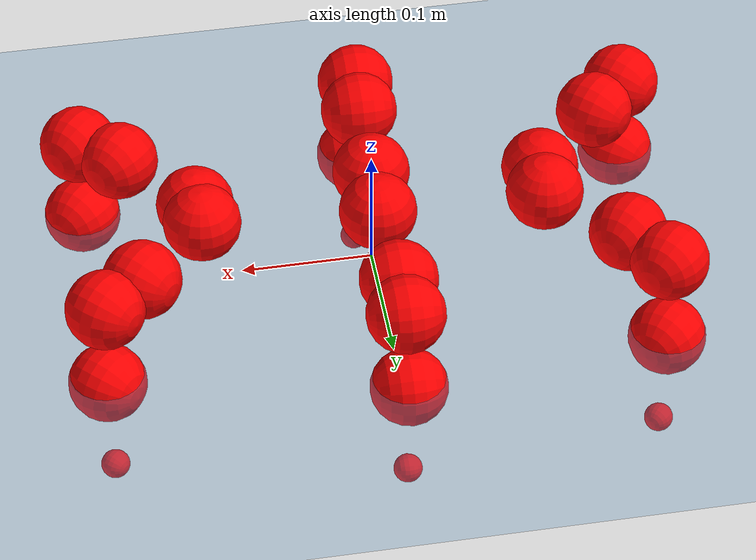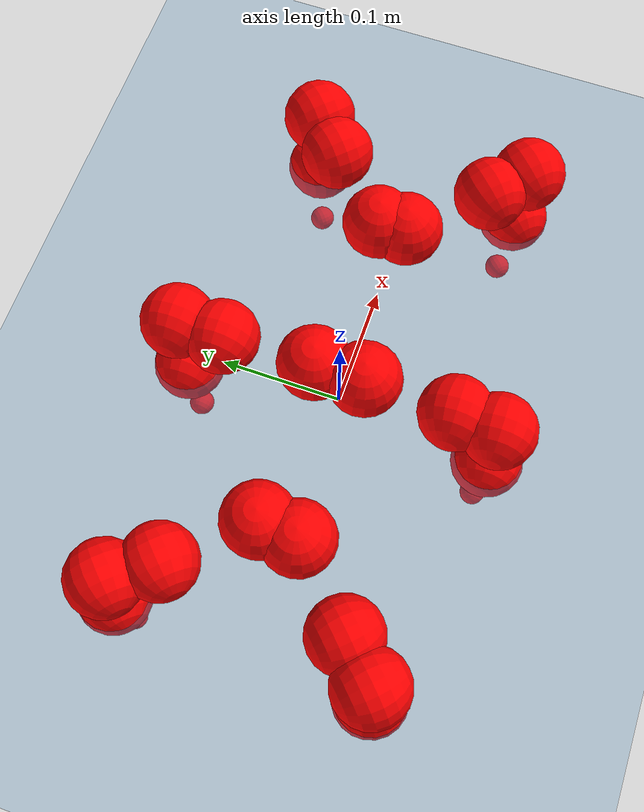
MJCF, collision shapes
<mujoco model="Golem">
  <compiler angle="radian" assetdir="assets" balanceinertia="true" inertiafromgeom="false"/>

  <option timestep="0.005" density="1.2" viscosity="2e-05"/>

  <size nkey="1"/>

  <visual>
    <quality shadowsize="8192"/>
    <map shadowclip="0.5"/>
  </visual>

  <default>
    <default class="/">
      <joint armature="0.01" damping="0.01" frictionloss="0.01"/>
      <geom contype="0" conaffinity="0" group="1" solref="-1000 -80"/>
      <site size="0.01 0.005 0.005" group="5"/>
      <general forcelimited="true" biastype="affine" gainprm="25" biasprm="0 -25 -0.5"/>
      <default class="visual">
        <geom type="mesh" group="2"/>
      </default>
      <default class="collision">
        <geom group="3"/>
      </default>
      <default class="foot">
        <geom size="0.01 0 0" condim="6" group="4" priority="1" solimp="0.015 1 0.01"/>
      </default>
      <default class="reward_collision_sphere">
        <geom group="5" rgba="1 0 0 1"/>
      </default>
    </default>
  </default>

  <asset>
    <texture type="skybox" colorspace="auto" name="//unnamed_texture_0" builtin="gradient" rgb1="0.95 0.95 0.95" rgb2="0.95 0.95 0.95" width="100" height="600"/>
    <texture type="2d" colorspace="auto" name="texplane" builtin="checker" rgb1="0.345 0.575 0.748" rgb2="0.345 0.575 0.748" markrgb="1 1 1" width="512" height="512"/>
    <material name="MatPlane" class="/" texture="texplane" texuniform="true" texrepeat="2 2" specular="0.9"/>
    <mesh name="body" class="/" file="body.stl" scale="0.001 0.001 0.001"/>
    <mesh name="coxa" class="/" file="coxa.stl" scale="0.001 0.001 0.001"/>
    <mesh name="femur" class="/" file="femur.stl" scale="0.001 0.001 0.001"/>
    <mesh name="tibia" class="/" file="tibia.stl" scale="0.001 0.001 0.001"/>
    <mesh name="tarsus" class="/" file="tarsus.stl" scale="0.001 0.001 0.001"/>
  </asset>

  <worldbody>
    <geom name="floor" class="/" size="100 100 0.125" type="plane" group="0" material="MatPlane"/>
    <light name="toplight_shadow" class="/" pos="0 0 5" dir="0.0990148 0.0990148 -0.990148" type="directional" ambient="0.04 0.04 0.04" diffuse="0.55 0.55 0.55" specular="0.12 0.12 0.12"/>
    <light name="toplight_fill" class="/" pos="0 0 5" dir="0.0990148 0.0990148 -0.990148" type="directional" castshadow="false" ambient="0.04 0.04 0.04" diffuse="0.3 0.3 0.3" specular="0.08 0.08 0.08"/>
    <body name="trunk" pos="0.00048562 -0.000506573 0.00161158" quat="1 -7.9307e-05 -3.05395e-05 0.000122478">
      <inertial pos="0.00283227 0.000380834 -0.00234402" quat="0.999999 -0.000427098 0.000461509 0.00125698" mass="1.47977" diaginertia="0.00437756 5.77251e-05 0.0103425"/>
      <joint name="//unnamed_joint_0" type="free"/>
      <geom name="//unnamed_geom_1" class="/" pos="0 0 0.0641268" quat="1 0 0 0" type="mesh" rgba="0.9 0.9 0.9 1" mesh="body"/>
      <site name="imu" class="/" pos="0.111338 -0.0137383 0.0992953" size="0.00735098"/>
      <camera name="track" class="/" pos="0 -0.717352 0" quat="0.707107 0.707107 0 0" mode="trackcom"/>
      <camera name="ego_camera" class="/" pos="0.109803 0 0.100198" quat="-0.5 -0.5 0.5 0.5"/>
      <body name="coxa_RR" pos="-0.150445 -0.0312923 0.0591095" quat="0.38259 -6.6867e-05 2.97409e-05 -0.923918">
        <inertial pos="-0.00106782 0.00085632 0.00192858" quat="0.999918 -0.00600443 -0.0105502 -0.00397937" mass="0.0799852" diaginertia="0.00436831 6.01261e-05 0.0104568"/>
        <joint name="coxa_joint_RR" class="/" pos="0 0 0" axis="0.000355557 0.000792956 -1" stiffness="0.00476987" range="-3.17767 3.12271" armature="0.0073697" damping="0" frictionloss="0.00835248"/>
        <geom name="//unnamed_geom_2" class="/" type="mesh" rgba="0.2 0.2 0.2 1" mesh="coxa"/>
        <geom name="//unnamed_geom_3" class="reward_collision_sphere" size="0.0294039" pos="-0.0253391 0 0"/>
        <body name="femur_RR" pos="0.0510514 -8.91943e-05 0.00218113" quat="0.500203 -0.499837 0.499993 0.499967">
          <inertial pos="-0.000188171 0.000616521 -0.00149653" quat="0.999992 0.00157886 0.00235148 0.0028538" mass="0.0788733" diaginertia="0.00447473 6.17877e-05 0.00987048"/>
          <joint name="femur_joint_RR" class="/" pos="0 0 0" axis="0.000857442 0.0139865 -0.999902" range="-3.12234 3.12022" armature="0.00689781" damping="0" frictionloss="0.00653612"/>
          <geom name="//unnamed_geom_4" class="/" type="mesh" rgba="0.9 0.9 0.9 1" mesh="femur"/>
          <geom name="//unnamed_geom_5" class="reward_collision_sphere" size="0.0294039"/>
          <body name="tibia_RR" pos="-0.000997525 -0.0387785 0.000379557" quat="-0.000980423 0.999999 -7.54321e-07 0.000542049">
            <inertial pos="0.00191242 0.00273682 0.000361561" quat="0.999993 0.00171544 -0.000256682 0.00321517" mass="0.0813936" diaginertia="0.00418419 5.91939e-05 0.00993487"/>
            <joint name="tibia_joint_RR" class="/" pos="0 0 0" axis="0.00168122 0.00296841 0.999994" stiffness="0.00879045" range="-3.12773 3.12006" armature="0.00676028" damping="0.00496763" frictionloss="0.00717153"/>
            <geom name="//unnamed_geom_6" class="/" type="mesh" rgba="0.2 0.2 0.2 1" mesh="tibia"/>
            <geom name="//unnamed_geom_7" class="reward_collision_sphere" size="0.0294039"/>
            <body name="tarsus_RR" pos="0.0730457 0.00201599 -0.00127801" quat="0.999999 -0.00132493 7.08125e-05 -0.000185248">
              <inertial pos="0.0493709 9.50141e-06 0.000699965" quat="0.501799 0.496027 0.50032 0.501831" mass="0.0824128" diaginertia="0.00459996 5.93635e-05 0.0108045"/>
              <joint name="tarsus_joint_RR" class="/" pos="0 0 0" axis="-0.00799054 0.00160613 0.999967" range="-3.19586 3.13055" armature="0.00673144" damping="0.0105932" frictionloss="0.00767257"/>
              <geom name="//unnamed_geom_8" class="/" type="mesh" rgba="0.9 0.9 0.9 1" mesh="tarsus"/>
              <geom name="foot_1" class="foot" size="0.00787599" pos="0.0945995 0 0" quat="0 -0.707107 0 0.707107"/>
              <geom name="//unnamed_geom_10" class="reward_collision_sphere" size="0.0294039"/>
              <geom name="//unnamed_geom_11" class="reward_collision_sphere" size="0.0110265" pos="0.0907986 0 0"/>
              <site name="foot_1" class="foot" pos="0.0945995 0 0" quat="0 -0.707107 0 0.707107" size="0.00735098"/>
            </body>
          </body>
        </body>
      </body>
      <body name="coxa_RM" pos="-0.00352241 -0.0456041 0.0673396" quat="0.707126 -0.000260028 0.000355755 -0.707087">
        <inertial pos="0.00283664 -0.00117755 0.00287586" quat="0.999993 -0.000645211 0.00328532 -0.00146811" mass="0.0762384" diaginertia="0.00416695 5.86293e-05 0.009962"/>
        <joint name="coxa_joint_RM" class="/" pos="0 0 0" axis="-0.00405197 -0.00417294 -0.999983" range="-3.14768 3.1724" armature="0.00733245" damping="0.0114467" frictionloss="0.00650049"/>
        <geom name="//unnamed_geom_12" class="/" type="mesh" rgba="0.2 0.2 0.2 1" mesh="coxa"/>
        <geom name="//unnamed_geom_13" class="reward_collision_sphere" size="0.0294039" pos="-0.0253391 0 0"/>
        <body name="femur_RM" pos="0.0470209 -0.0026297 -0.0022287" quat="0.500028 -0.49998 0.500074 0.499918">
          <inertial pos="0.00264064 0.00148904 -0.000292701" quat="0.999969 0.00719696 0.0024038 -0.00229381" mass="0.0844324" diaginertia="0.00439701 5.88684e-05 0.0100131"/>
          <joint name="femur_joint_RM" class="/" pos="0 0 0" axis="0.00127151 0.0120321 -0.999927" range="-3.19668 3.15995" armature="0.00750101" damping="0.0214926" frictionloss="0.008262"/>
          <geom name="//unnamed_geom_14" class="/" type="mesh" rgba="0.9 0.9 0.9 1" mesh="femur"/>
          <geom name="//unnamed_geom_15" class="reward_collision_sphere" size="0.0294039"/>
          <body name="tibia_RM" pos="0.00122084 -0.0343003 -0.00271595" quat="3.17282e-06 1 3.29278e-06 -4.54538e-06">
            <inertial pos="0.00268761 -0.00332082 -0.00117171" quat="0.999973 -0.00335564 0.00374792 -0.00544541" mass="0.0794558" diaginertia="0.0042984 5.79604e-05 0.0101839"/>
            <joint name="tibia_joint_RM" class="/" pos="0 0 0" axis="-0.000651521 0.00534505 0.999986" range="-3.12122 3.08458" armature="0.00765495" damping="0.0219298" frictionloss="0.00735542"/>
            <geom name="//unnamed_geom_16" class="/" type="mesh" rgba="0.2 0.2 0.2 1" mesh="tibia"/>
            <geom name="//unnamed_geom_17" class="reward_collision_sphere" size="0.0294039"/>
            <body name="tarsus_RM" pos="0.0769225 0.00104571 -0.00145766" quat="1 0.000101482 0.000190572 5.02459e-05">
              <inertial pos="0.0535818 -0.0017471 0.000559288" quat="0.494596 0.507815 0.493403 0.504037" mass="0.0805085" diaginertia="0.00445 6.13897e-05 0.00977655"/>
              <joint name="tarsus_joint_RM" class="/" pos="0 0 0" axis="-2.66231e-05 -0.00179012 0.999998" stiffness="0.0067681" range="-3.12848 3.19578" armature="0.00722278" damping="0.00903526" frictionloss="0.00698397"/>
              <geom name="//unnamed_geom_18" class="/" type="mesh" rgba="0.9 0.9 0.9 1" mesh="tarsus"/>
              <geom name="foot_2" class="foot" size="0.00758586" pos="0.0945995 0 0" quat="0 -0.707107 0 0.707107"/>
              <geom name="//unnamed_geom_20" class="reward_collision_sphere" size="0.0294039"/>
              <geom name="//unnamed_geom_21" class="reward_collision_sphere" size="0.0110265" pos="0.0907986 0 0"/>
              <site name="foot_2" class="foot" pos="0.0945995 0 0" quat="0 -0.707107 0 0.707107" size="0.00735098"/>
            </body>
          </body>
        </body>
      </body>
      <body name="coxa_RF" pos="0.149365 -0.0284761 0.0627538" quat="0.923789 -0.000591202 9.34631e-05 -0.382902">
        <inertial pos="-0.00212429 0.000519842 0.00299716" quat="0.999933 -0.00805393 -0.008129 0.00177333" mass="0.0776789" diaginertia="0.00444595 6.04761e-05 0.0101238"/>
        <joint name="coxa_joint_RF" class="/" pos="0 0 0" axis="0.00572441 4.5811e-05 -0.999984" range="-3.19485 3.15475" armature="0.00640785" damping="0.0237454" frictionloss="0.00735379"/>
        <geom name="//unnamed_geom_22" class="/" type="mesh" rgba="0.2 0.2 0.2 1" mesh="coxa"/>
        <geom name="//unnamed_geom_23" class="reward_collision_sphere" size="0.0294039" pos="-0.0253391 0 0"/>
        <body name="femur_RF" pos="0.0493679 -0.00226299 0.00291797" quat="0.499758 -0.499755 0.500132 0.500355">
          <inertial pos="-0.00047163 -0.0022357 0.00087853" quat="0.999996 0.000684585 9.44628e-05 -0.00258927" mass="0.0780784" diaginertia="0.00417282 5.92417e-05 0.00997594"/>
          <joint name="femur_joint_RF" class="/" pos="0 0 0" axis="-0.0111657 0.00429046 -0.999928" range="-3.09156 3.13797" armature="0.00770442" damping="0" frictionloss="0.00700588"/>
          <geom name="//unnamed_geom_24" class="/" type="mesh" rgba="0.9 0.9 0.9 1" mesh="femur"/>
          <geom name="//unnamed_geom_25" class="reward_collision_sphere" size="0.0294039"/>
          <body name="tibia_RF" pos="0.00115559 -0.0376811 0.00297519" quat="-0.000592664 0.999999 0.000325377 0.000917282">
            <inertial pos="0.00120055 0.0028984 -0.00264082" quat="0.999923 0.0119627 0.00273814 0.00166633" mass="0.0800279" diaginertia="0.00433242 5.77941e-05 0.00969121"/>
            <joint name="tibia_joint_RF" class="/" pos="0 0 0" axis="0.00568509 -0.00270672 0.99998" stiffness="0.0063261" range="-3.16668 3.1493" armature="0.00641665" damping="0.00442538" frictionloss="0.00740791"/>
            <geom name="//unnamed_geom_26" class="/" type="mesh" rgba="0.2 0.2 0.2 1" mesh="tibia"/>
            <geom name="//unnamed_geom_27" class="reward_collision_sphere" size="0.0294039"/>
            <body name="tarsus_RF" pos="0.0715697 2.46817e-06 -0.00276851" quat="1 2.48289e-05 -0.000497776 6.7175e-05">
              <inertial pos="0.0501436 -0.000265781 -0.000146893" quat="0.497345 0.509233 0.495071 0.498231" mass="0.0760207" diaginertia="0.00430921 5.85778e-05 0.0098938"/>
              <joint name="tarsus_joint_RF" class="/" pos="0 0 0" axis="-0.0019794 0.0017977 0.999996" stiffness="0.00122891" range="-3.12974 3.17346" armature="0.00742376" damping="0.0159995" frictionloss="0.0082651"/>
              <geom name="//unnamed_geom_28" class="/" type="mesh" rgba="0.9 0.9 0.9 1" mesh="tarsus"/>
              <geom name="foot_3" class="foot" size="0.00791345" pos="0.0945995 0 0" quat="0 -0.707107 0 0.707107"/>
              <geom name="//unnamed_geom_30" class="reward_collision_sphere" size="0.0294039"/>
              <geom name="//unnamed_geom_31" class="reward_collision_sphere" size="0.0110265" pos="0.0907986 0 0"/>
              <site name="foot_3" class="foot" pos="0.0945995 0 0" quat="0 -0.707107 0 0.707107" size="0.00735098"/>
            </body>
          </body>
        </body>
      </body>
      <body name="coxa_LR" pos="-0.147628 0.0353403 0.0622274" quat="0.382582 1.26104e-05 0.000513443 0.923921">
        <inertial pos="0.00122968 -0.00185421 -0.0025827" quat="0.999948 0.00790137 0.00617574 -0.0016118" mass="0.081289" diaginertia="0.00440242 6.0457e-05 0.0102875"/>
        <joint name="coxa_joint_LR" class="/" pos="0 0 0" axis="0.000455944 -0.00127941 -0.999999" range="-3.16361 3.12709" armature="0.00631784" damping="0.0122863" frictionloss="0.00760136"/>
        <geom name="//unnamed_geom_32" class="/" type="mesh" rgba="0.2 0.2 0.2 1" mesh="coxa"/>
        <geom name="//unnamed_geom_33" class="reward_collision_sphere" size="0.0294039" pos="-0.0253391 0 0"/>
        <body name="femur_LR" pos="0.050008 -0.00255911 0.00215011" quat="0.500063 -0.500089 0.499567 0.500281">
          <inertial pos="0.00262878 -0.000387529 -0.00172379" quat="0.999993 -0.00259364 -0.000605713 0.00247701" mass="0.0795797" diaginertia="0.00432256 5.94733e-05 0.0105344"/>
          <joint name="femur_joint_LR" class="/" pos="0 0 0" axis="-0.00132838 -0.00265766 0.999996" range="-3.08357 3.13128" armature="0.00776409" damping="0.005983" frictionloss="0.00734784"/>
          <geom name="//unnamed_geom_34" class="/" type="mesh" rgba="0.9 0.9 0.9 1" mesh="femur"/>
          <geom name="//unnamed_geom_35" class="reward_collision_sphere" size="0.0294039"/>
          <body name="tibia_LR" pos="0.00181159 -0.0398026 -0.00663926" quat="5.73286e-05 1 -2.98849e-05 6.27926e-05">
            <inertial pos="0.00260105 -0.00378266 0.00390539" quat="0.999957 0.00853728 0.00222474 -0.00297805" mass="0.0757787" diaginertia="0.00424284 6.04064e-05 0.010007"/>
            <joint name="tibia_joint_LR" class="/" pos="0 0 0" axis="-0.000201801 -0.00122115 -0.999999" range="-3.09877 3.11366" armature="0.00714165" damping="0.0120748" frictionloss="0.00631508"/>
            <geom name="//unnamed_geom_36" class="/" type="mesh" rgba="0.2 0.2 0.2 1" mesh="tibia"/>
            <geom name="//unnamed_geom_37" class="reward_collision_sphere" size="0.0294039"/>
            <body name="tarsus_LR" pos="0.0735862 0.00563223 0.00306196" quat="1 -0.000457814 -0.000537925 0.000530904">
              <inertial pos="0.0500175 -0.00182468 -0.000728104" quat="0.501023 0.496968 0.498355 0.503627" mass="0.080995" diaginertia="0.00438199 5.8299e-05 0.0101417"/>
              <joint name="tarsus_joint_LR" class="/" pos="0 0 0" axis="-0.0110782 0.00289872 -0.999934" range="-3.12366 3.13031" armature="0.00749551" damping="0.013267" frictionloss="0.00745877"/>
              <geom name="//unnamed_geom_38" class="/" type="mesh" rgba="0.9 0.9 0.9 1" mesh="tarsus"/>
              <geom name="foot_4" class="foot" size="0.00700146" pos="0.0945995 0 0" quat="0.707107 0 -0.707107 0"/>
              <geom name="//unnamed_geom_40" class="reward_collision_sphere" size="0.0294039"/>
              <geom name="//unnamed_geom_41" class="reward_collision_sphere" size="0.0110265" pos="0.0907986 0 0"/>
              <site name="foot_4" class="foot" pos="0.0945995 0 0" quat="0.707107 0 -0.707107 0" size="0.00735098"/>
            </body>
          </body>
        </body>
      </body>
      <body name="coxa_LM" pos="-0.00212939 0.0454184 0.0642662" quat="0.707232 -0.000118836 5.16591e-06 0.706981">
        <inertial pos="-0.00235678 -0.000253159 0.00281958" quat="0.999999 0.000602028 -0.00130494 0.000311648" mass="0.0765985" diaginertia="0.00427871 5.91076e-05 0.0103951"/>
        <joint name="coxa_joint_LM" class="/" pos="0 0 0" axis="-0.00324881 0.00258145 -0.999991" range="-3.17479 3.11778" armature="0.00636294" damping="0.0144351" frictionloss="0.00807059"/>
        <geom name="//unnamed_geom_42" class="/" type="mesh" rgba="0.2 0.2 0.2 1" mesh="coxa"/>
        <geom name="//unnamed_geom_43" class="reward_collision_sphere" size="0.0294039" pos="-0.0253391 0 0"/>
        <body name="femur_LM" pos="0.0480768 0.00289789 0.000438067" quat="0.49982 -0.50022 0.499946 0.500014">
          <inertial pos="4.65306e-05 -0.00236668 -0.000502482" quat="0.999907 0.00142818 0.0125051 -0.00526525" mass="0.0769366" diaginertia="0.00417161 5.84549e-05 0.00993886"/>
          <joint name="femur_joint_LM" class="/" pos="0 0 0" axis="-0.0146036 -0.00291768 0.999889" stiffness="0.010407" range="-3.10786 3.1512" armature="0.00625075" damping="0.0138851" frictionloss="0.00831661"/>
          <geom name="//unnamed_geom_44" class="/" type="mesh" rgba="0.9 0.9 0.9 1" mesh="femur"/>
          <geom name="//unnamed_geom_45" class="reward_collision_sphere" size="0.0294039"/>
          <body name="tibia_LM" pos="-0.000690233 -0.036847 -0.00104679" quat="5.95886e-05 1 -6.43255e-05 0.000110691">
            <inertial pos="-0.000361643 -0.000431941 -0.000287523" quat="1 -0.000349956 -3.31789e-05 0.000649738" mass="0.0824939" diaginertia="0.00426174 5.94737e-05 0.0101668"/>
            <joint name="tibia_joint_LM" class="/" pos="0 0 0" axis="-0.003071 -0.00240821 -0.999992" stiffness="0.00325026" range="-3.09509 3.14416" armature="0.00747132" damping="6.30321e-05" frictionloss="0.0063274"/>
            <geom name="//unnamed_geom_46" class="/" type="mesh" rgba="0.2 0.2 0.2 1" mesh="tibia"/>
            <geom name="//unnamed_geom_47" class="reward_collision_sphere" size="0.0294039"/>
            <body name="tarsus_LM" pos="0.0780533 -0.000780438 -0.00315395" quat="1 -0.000441405 0.000296645 8.73618e-05">
              <inertial pos="0.0480722 -0.00144851 -0.000248834" quat="0.499954 0.498876 0.500586 0.500583" mass="0.0773773" diaginertia="0.00430184 5.99171e-05 0.0104003"/>
              <joint name="tarsus_joint_LM" class="/" pos="0 0 0" axis="0.00022075 0.00906922 -0.999959" range="-3.09983 3.09255" armature="0.00743952" damping="0.00504025" frictionloss="0.00668903"/>
              <geom name="//unnamed_geom_48" class="/" type="mesh" rgba="0.9 0.9 0.9 1" mesh="tarsus"/>
              <geom name="foot_5" class="foot" size="0.00753089" pos="0.0945995 0 0" quat="0.707107 0 -0.707107 0"/>
              <geom name="//unnamed_geom_50" class="reward_collision_sphere" size="0.0294039"/>
              <geom name="//unnamed_geom_51" class="reward_collision_sphere" size="0.0110265" pos="0.0907986 0 0"/>
              <site name="foot_5" class="foot" pos="0.0945995 0 0" quat="0.707107 0 -0.707107 0" size="0.00735098"/>
            </body>
          </body>
        </body>
      </body>
      <body name="coxa_LF" pos="0.146798 0.0296349 0.0652793" quat="0.923422 -0.000220278 0.000679398 0.383785">
        <inertial pos="0.000121975 -0.00222454 -4.74843e-05" quat="0.999967 -0.00131502 -0.00547073 -0.00593955" mass="0.0765202" diaginertia="0.00417965 5.67415e-05 0.00977641"/>
        <joint name="coxa_joint_LF" class="/" pos="0 0 0" axis="0.000289741 0.00330347 -0.999995" range="-3.18867 3.08822" armature="0.00761173" damping="0.00198626" frictionloss="0.00838944"/>
        <geom name="//unnamed_geom_52" class="/" type="mesh" rgba="0.2 0.2 0.2 1" mesh="coxa"/>
        <geom name="//unnamed_geom_53" class="reward_collision_sphere" size="0.0294039" pos="-0.0253391 0 0"/>
        <body name="femur_LF" pos="0.047443 0.00130304 0.000132054" quat="0.50048 -0.498785 0.500549 0.500184">
          <inertial pos="0.00125578 -0.000530009 -0.000163056" quat="1 0.000365505 -0.000163315 0.000556452" mass="0.0798819" diaginertia="0.00419414 5.88567e-05 0.00978721"/>
          <joint name="femur_joint_LF" class="/" pos="0 0 0" axis="0.012951 0.00782303 0.999886" range="-3.16036 3.08308" armature="0.00760295" damping="0.0123466" frictionloss="0.00750619"/>
          <geom name="//unnamed_geom_54" class="/" type="mesh" rgba="0.9 0.9 0.9 1" mesh="femur"/>
          <geom name="//unnamed_geom_55" class="reward_collision_sphere" size="0.0294039"/>
          <body name="tibia_LF" pos="0.000665478 -0.0387867 -0.00294563" quat="0.000220135 1 -3.07432e-05 6.57419e-05">
            <inertial pos="0.000990548 0.000105145 -0.00116243" quat="0.9999 0.0139912 -0.00106646 0.00178862" mass="0.081876" diaginertia="0.00417407 5.716e-05 0.00972621"/>
            <joint name="tibia_joint_LF" class="/" pos="0 0 0" axis="0.014359 -0.00411213 -0.999888" stiffness="0.00618482" range="-3.14164 3.11993" armature="0.00847261" damping="0.00849725" frictionloss="0.0064216"/>
            <geom name="//unnamed_geom_56" class="/" type="mesh" rgba="0.2 0.2 0.2 1" mesh="tibia"/>
            <geom name="//unnamed_geom_57" class="reward_collision_sphere" size="0.0294039"/>
            <body name="tarsus_LF" pos="0.076681 0.00205213 0.00237531" quat="1 0.000124903 -0.000346464 0.000125144">
              <inertial pos="0.0488 0.00129253 0.000209326" quat="0.49802 0.500549 0.500551 0.500875" mass="0.0758913" diaginertia="0.00427302 5.74884e-05 0.00972301"/>
              <joint name="tarsus_joint_LF" class="/" pos="0 0 0" axis="0.00254204 0.0111707 -0.999934" stiffness="0.0328734" range="-3.1335 3.19358" armature="0.00761794" damping="0.0289847" frictionloss="0.00737337"/>
              <geom name="//unnamed_geom_58" class="/" type="mesh" rgba="0.9 0.9 0.9 1" mesh="tarsus"/>
              <geom name="foot_6" class="foot" size="0.00732467" pos="0.0945995 0 0" quat="0.707107 0 -0.707107 0"/>
              <geom name="//unnamed_geom_60" class="reward_collision_sphere" size="0.0294039"/>
              <geom name="//unnamed_geom_61" class="reward_collision_sphere" size="0.0110265" pos="0.0907986 0 0"/>
              <site name="foot_6" class="foot" pos="0.0945995 0 0" quat="0.707107 0 -0.707107 0" size="0.00735098"/>
            </body>
          </body>
        </body>
      </body>
    </body>
  </worldbody>

  <contact>
    <pair class="/" geom1="floor" geom2="foot_1" name="//unnamed_contact_0"/>
    <pair class="/" geom1="floor" geom2="foot_2" name="//unnamed_contact_1"/>
    <pair class="/" geom1="floor" geom2="foot_3" name="//unnamed_contact_2"/>
    <pair class="/" geom1="floor" geom2="foot_4" name="//unnamed_contact_3"/>
    <pair class="/" geom1="floor" geom2="foot_5" name="//unnamed_contact_4"/>
    <pair class="/" geom1="floor" geom2="foot_6" name="//unnamed_contact_5"/>
  </contact>

  <actuator>
    <general name="coxa_joint_RR" class="/" joint="coxa_joint_RR" forcerange="-5.83142 5.83142" gainprm="18.26" biasprm="0 -18.26 -0.371855"/>
    <general name="femur_joint_RR" class="/" joint="femur_joint_RR" forcerange="-5.92074 5.92074" gainprm="18.26" biasprm="0 -18.26 -0.371855"/>
    <general name="tibia_joint_RR" class="/" joint="tibia_joint_RR" forcerange="-5.04096 5.04096" gainprm="18.26" biasprm="0 -18.26 -0.371855"/>
    <general name="tarsus_joint_RR" class="/" joint="tarsus_joint_RR" forcerange="-5.5617 5.5617" gainprm="18.26" biasprm="0 -18.26 -0.371855"/>
    <general name="coxa_joint_RM" class="/" joint="coxa_joint_RM" forcerange="-5.81823 5.81823" gainprm="18.26" biasprm="0 -18.26 -0.371855"/>
    <general name="femur_joint_RM" class="/" joint="femur_joint_RM" forcerange="-5.70229 5.70229" gainprm="18.26" biasprm="0 -18.26 -0.371855"/>
    <general name="tibia_joint_RM" class="/" joint="tibia_joint_RM" forcerange="-4.80519 4.80519" gainprm="18.26" biasprm="0 -18.26 -0.371855"/>
    <general name="tarsus_joint_RM" class="/" joint="tarsus_joint_RM" forcerange="-5.37996 5.37996" gainprm="18.26" biasprm="0 -18.26 -0.371855"/>
    <general name="coxa_joint_RF" class="/" joint="coxa_joint_RF" forcerange="-5.56697 5.56697" gainprm="18.26" biasprm="0 -18.26 -0.371855"/>
    <general name="femur_joint_RF" class="/" joint="femur_joint_RF" forcerange="-5.17396 5.17396" gainprm="18.26" biasprm="0 -18.26 -0.371855"/>
    <general name="tibia_joint_RF" class="/" joint="tibia_joint_RF" forcerange="-4.81983 4.81983" gainprm="18.26" biasprm="0 -18.26 -0.371855"/>
    <general name="tarsus_joint_RF" class="/" joint="tarsus_joint_RF" forcerange="-5.17003 5.17003" gainprm="18.26" biasprm="0 -18.26 -0.371855"/>
    <general name="coxa_joint_LR" class="/" joint="coxa_joint_LR" forcerange="-5.9363 5.9363" gainprm="18.26" biasprm="0 -18.26 -0.371855"/>
    <general name="femur_joint_LR" class="/" joint="femur_joint_LR" forcerange="-4.87548 4.87548" gainprm="18.26" biasprm="0 -18.26 -0.371855"/>
    <general name="tibia_joint_LR" class="/" joint="tibia_joint_LR" forcerange="-4.81208 4.81208" gainprm="18.26" biasprm="0 -18.26 -0.371855"/>
    <general name="tarsus_joint_LR" class="/" joint="tarsus_joint_LR" forcerange="-5.3696 5.3696" gainprm="18.26" biasprm="0 -18.26 -0.371855"/>
    <general name="coxa_joint_LM" class="/" joint="coxa_joint_LM" forcerange="-5.41451 5.41451" gainprm="18.26" biasprm="0 -18.26 -0.371855"/>
    <general name="femur_joint_LM" class="/" joint="femur_joint_LM" forcerange="-5.35734 5.35734" gainprm="18.26" biasprm="0 -18.26 -0.371855"/>
    <general name="tibia_joint_LM" class="/" joint="tibia_joint_LM" forcerange="-5.34028 5.34028" gainprm="18.26" biasprm="0 -18.26 -0.371855"/>
    <general name="tarsus_joint_LM" class="/" joint="tarsus_joint_LM" forcerange="-5.33292 5.33292" gainprm="18.26" biasprm="0 -18.26 -0.371855"/>
    <general name="coxa_joint_LF" class="/" joint="coxa_joint_LF" forcerange="-5.6908 5.6908" gainprm="18.26" biasprm="0 -18.26 -0.371855"/>
    <general name="femur_joint_LF" class="/" joint="femur_joint_LF" forcerange="-5.65188 5.65188" gainprm="18.26" biasprm="0 -18.26 -0.371855"/>
    <general name="tibia_joint_LF" class="/" joint="tibia_joint_LF" forcerange="-5.49437 5.49437" gainprm="18.26" biasprm="0 -18.26 -0.371855"/>
    <general name="tarsus_joint_LF" class="/" joint="tarsus_joint_LF" forcerange="-4.97555 4.97555" gainprm="18.26" biasprm="0 -18.26 -0.371855"/>
  </actuator>

  <sensor>
    <gyro site="imu" name="imu_angular_velocity"/>
    <velocimeter site="imu" name="imu_linear_velocity"/>
    <framelinvel objtype="site" objname="foot_1" name="foot_1_global_linear_velocity"/>
    <framelinvel objtype="site" objname="foot_2" name="foot_2_global_linear_velocity"/>
    <framelinvel objtype="site" objname="foot_3" name="foot_3_global_linear_velocity"/>
    <framelinvel objtype="site" objname="foot_4" name="foot_4_global_linear_velocity"/>
    <framelinvel objtype="site" objname="foot_5" name="foot_5_global_linear_velocity"/>
    <framelinvel objtype="site" objname="foot_6" name="foot_6_global_linear_velocity"/>
  </sensor>

  <keyframe>
    <key name="home" qpos="0 0 0.1457 1 0 0 0 0 0 0 0 0 0 0 0 0 0 0 0 0 0 0 0 0 0 0 0 0 0 0 0"/>
  </keyframe>
</mujoco>
